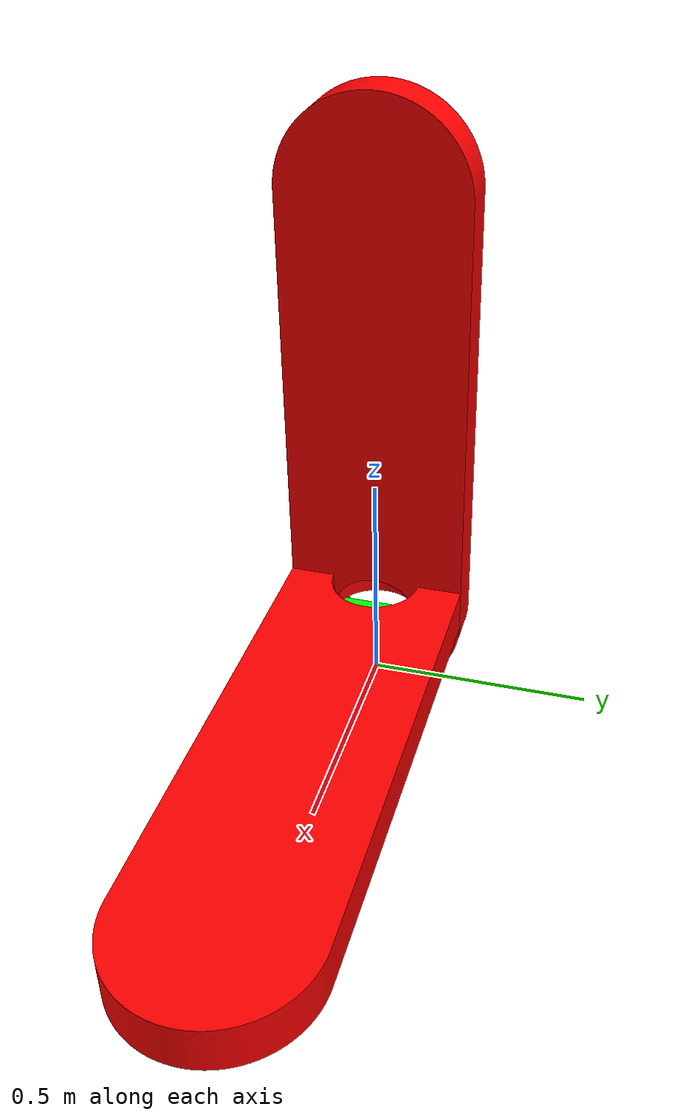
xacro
<?xml version="1.0"?>

<robot xmlns:xacro="http://www.ros.org/wiki/xacro" name="robot_v1">
    <!-- Properties -->
    <xacro:property name="link1_mesh" value="package://robot_viz/urdf/meshes/link1_body.stl" />
    <!-- XACRO macro function declarations -->

    <!-- create_base_link macro -->
    <!-- name: Namepackage://robot_viz/urdf/meshes/link1_body.stl of the link -->
    <!-- link_inertia_visual_collision: Code for the entire inertia, visual and collision of the link -->
    <xacro:macro name="create_base_link" params="name:=base_link **link_inertia_visual_collision">
        <link name="${name}">
            <xacro:insert_block name="link_inertia_visual_collision" />
        </link>
    </xacro:macro>

    <!-- attach_link macro -->
    <!-- Creates a child link to a parent. Joint type is revolute and actuation is along Z axis (DH convention) -->
    <!-- @Parameters -->
    <!-- parent: Parent link name [default is "base_link"] -->
    <!-- child: Name of the child link (required) -->
    <!-- file_path: Path to the mesh file (stl or dae) for the child link -->
    <!-- mesh_scale: Scaling factor of the mesh that is imported [default is 0.001] -->
    <!-- min_q: Minimum actuation value of the revolute joint -->
    <!-- max_q: Maximum actuation value of the revolute joint -->
    <xacro:macro name="attach_link" params="parent:=base_link child file_path mesh_scale:=0.001 min_q max_q *joint_origin *collision_geometry **inertia_block">
        <link name="${child}">
            <inertial>
                <xacro:insert_block name="inertia_block" />
            </inertial>
            <visual>
                <origin xyz="0.0 0.0 0.0" rpy="0.0 0.0 0.0"/>
                <geometry>
                    <mesh filename="${file_path}" scale="${mesh_scale} ${mesh_scale} ${mesh_scale}"/>
                </geometry>
                <material name="link_material">
                    <color rgba="1.0 0.0 0.0 1.0"/>
                </material>
            </visual>
            <collision>
                <origin xyz="0.0 0.0 0.0" rpy="0.0 0.0 0.0"/>
                <geometry>
                    <xacro:insert_block name="collision_geometry" />
                </geometry>
            </collision>
        </link>
        <joint name="joint_${parent}_${child}" type="revolute">
            <xacro:insert_block name="joint_origin" />
            <parent link="${parent}"/>
            <child link="${child}"/>
            <axis xyz="0.0 0.0 1.0"/>
            <limit lower="${min_q}" upper="${max_q}" effort="10" velocity="10"/>
        </joint>
    </xacro:macro>

    <!-- Base link creation -->
    <xacro:create_base_link name="base_link">
        <inertia_visual_collision>
            <!-- Inertia properties here -->
            <inertial>
                <origin xyz="0.0 0.0 0.0" rpy="0.0 0.0 0.0"/>
                <mass value="0.0"/>
                <inertia ixx="0.0" ixy="0.0" ixz="0.0" iyy="0.0" iyz="0.0" izz="0.0"/>
            </inertial>
            <!-- Visual properties here -->
            <visual>
                <origin xyz="0.0 0.0 0.0" rpy="0.0 0.0 0.0"/>
                <geometry>
                    <box size="0.1 0.2 0.3"/>
                </geometry>
                <material name="base_material">
                    <color rgba="0.0 1.0 0.0 1.0"/>
                </material>
            </visual>
            <!-- Collision properties here -->
            <collision>
                <origin xyz="0.0 0.0 0.0" rpy="0.0 0.0 0.0"/>
                <geometry>
                    <box size="0.1 0.2 0.3"/>
                </geometry>
            </collision>
        </inertia_visual_collision>
    </xacro:create_base_link>

    <!-- Child links -->
    <!-- Link 1 -->
    <xacro:attach_link parent="base_link" child="link1" file_path="${link1_mesh}" min_q="${-pi}" max_q="${pi}">
        <!-- Origin of child frame in parent frame -->
        <origin xyz="0.0 0.0 0.15" rpy="0.0 0.0 0.0"/>
        <!-- Collision boundary -->
        <box size="1 0.2 0.2"/>
        <!-- Inertial properties of the link -->
        <inertia_block>
            <origin xyz="0.0 0.0 0.0" rpy="0.0 0.0 0.0"/>
            <mass value="0.0"/>
            <inertia ixx="0.0" ixy="0.0" ixz="0.0" iyy="0.0" iyz="0.0" izz="0.0"/>
        </inertia_block>
    </xacro:attach_link>
    <!-- Link 2 -->
    <xacro:attach_link parent="link1" child="link2" file_path="${link1_mesh}" min_q="${-pi}" max_q="${pi}">
        <origin xyz="0.0 0.0 0" rpy="0.0 ${-pi / 2} 0.0"/>
        <box size="1 0.2 0.2"/>
        <inertia_block>
            <origin xyz="0.0 0.0 0.0" rpy="0.0 0.0 0.0"/>
            <mass value="0.0"/>
            <inertia ixx="0.0" ixy="0.0" ixz="0.0" iyy="0.0" iyz="0.0" izz="0.0"/>
        </inertia_block>
    </xacro:attach_link>

</robot>
